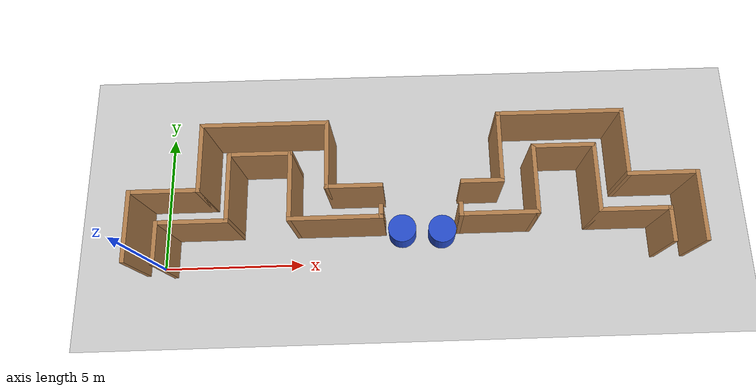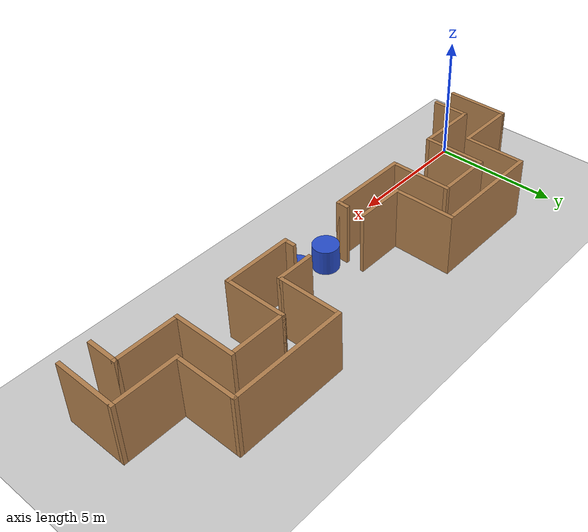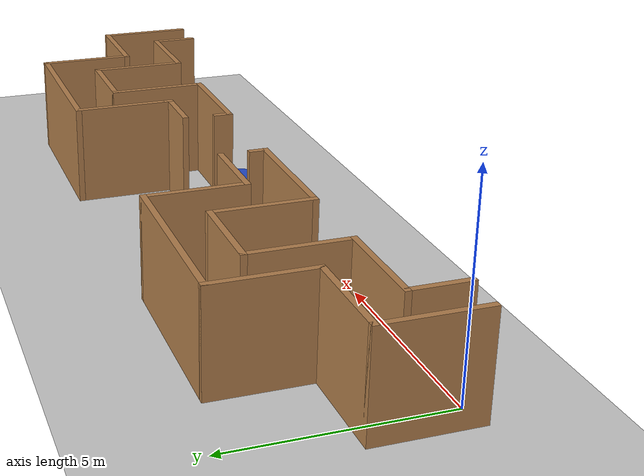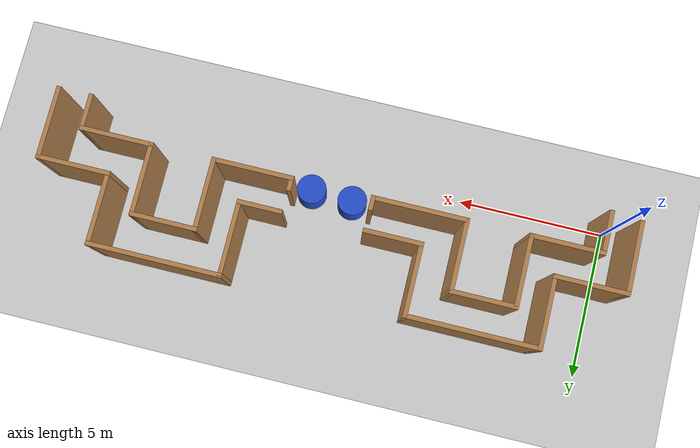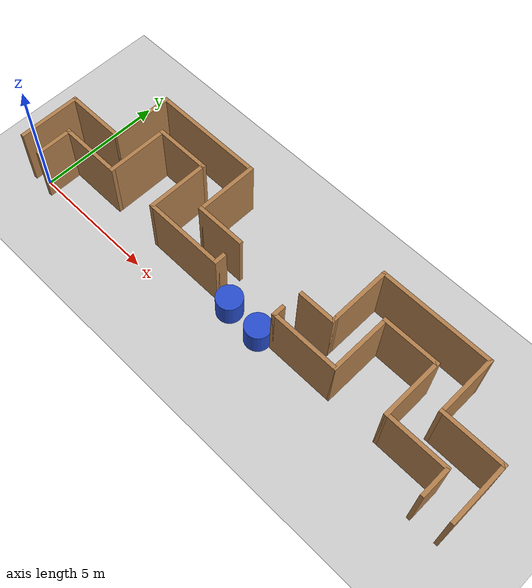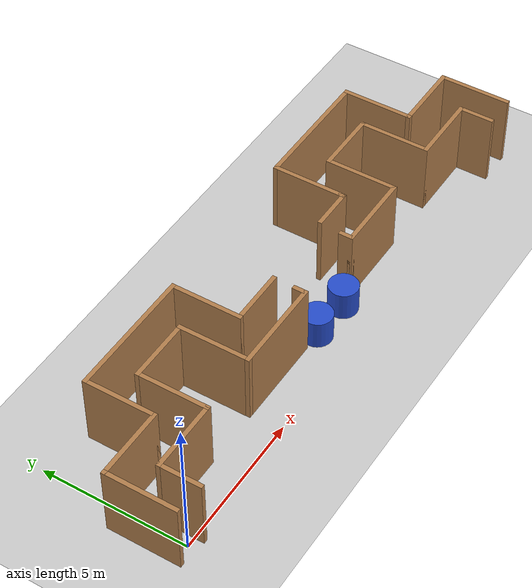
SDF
<sdf version="1.6">
 <world name="default">
  <light name="sun" type="directional">
   <pose>0 0 10 0 -0 0</pose>
   <diffuse>0.8 0.8 0.8 1</diffuse>
   <specular>0.2 0.2 0.2 1</specular>
   <attenuation>
    <range>1000</range>
    <constant>0.9</constant>
    <linear>0.01</linear>
    <quadratic>0.001</quadratic>
   </attenuation>
   <direction>-0.5 0.1 -0.9</direction>
  </light>
  <model name="ground_plane">
   <static>1</static>
   <link name="link">
    <collision name="collision">
     <geometry><plane><normal>0 0 1</normal><size>100 100</size></plane></geometry>
     <surface>
      <contact><collide_bitmask>65535</collide_bitmask></contact>
      <friction><ode><mu>100</mu><mu2>50</mu2></ode></friction>
     </surface>
    </collision>
    <visual name="visual">
     <cast_shadows>0</cast_shadows>
     <geometry><plane><normal>0 0 1</normal><size>100 100</size></plane></geometry>
     <material>
      <script><uri>file://media/materials/scripts/gazebo.material</uri><name>Gazebo/Grey</name></script>
     </material>
    </visual>
   </link>
  </model>
  <gravity>0 0 -9.8</gravity>
  <magnetic_field>6e-06 2.3e-05 -4.2e-05</magnetic_field>
  <atmosphere type="adiabatic"/>
  <physics name="default_physics" default="0" type="ode">
   <max_step_size>0.001</max_step_size>
   <real_time_factor>1</real_time_factor>
   <real_time_update_rate>1000</real_time_update_rate>
  </physics>
  <scene><ambient>0.4 0.4 0.4 1</ambient><background>0.7 0.7 0.7 1</background><shadows>1</shadows></scene>
  <audio><device>default</device></audio>
  <spherical_coordinates>
   <surface_model>EARTH_WGS84</surface_model>
   <latitude_deg>0</latitude_deg>
   <longitude_deg>0</longitude_deg>
   <elevation>0</elevation>
   <heading_deg>0</heading_deg>
  </spherical_coordinates>
  <model name="laberinto2_1">
   <pose>9.1133 2.22253 0 0 -0 0</pose>
   <link name="Wall_100">
    <collision name="Wall_100_Collision">
     <geometry><box><size>2.5 0.15 2.5</size></box></geometry>
     <pose>0 0 1.25 0 -0 0</pose>
    </collision>
    <visual name="Wall_100_Visual">
     <pose>0 0 1.25 0 -0 0</pose>
     <geometry><box><size>2.5 0.15 2.5</size></box></geometry>
     <material>
      <script><uri>file://media/materials/scripts/gazebo.material</uri><name>Gazebo/Wood</name></script>
      <ambient>1 1 1 1</ambient>
     </material>
     <meta><layer>0</layer></meta>
    </visual>
    <pose>-3 1.15 0 0 -0 -1.5708</pose>
   </link>
   <link name="Wall_101">
    <collision name="Wall_101_Collision">
     <geometry><box><size>2 0.15 2.5</size></box></geometry>
     <pose>0 0 1.25 0 -0 0</pose>
    </collision>
    <visual name="Wall_101_Visual">
     <pose>0 0 1.25 0 -0 0</pose>
     <geometry><box><size>2 0.15 2.5</size></box></geometry>
     <material>
      <script><uri>file://media/materials/scripts/gazebo.material</uri><name>Gazebo/Wood</name></script>
      <ambient>1 1 1 1</ambient>
     </material>
     <meta><layer>0</layer></meta>
    </visual>
    <pose>-2.075 -0.025 0 0 -0 0</pose>
   </link>
   <link name="Wall_105">
    <collision name="Wall_105_Collision">
     <geometry><box><size>3.25 0.15 2.5</size></box></geometry>
     <pose>0 0 1.25 0 -0 0</pose>
    </collision>
    <visual name="Wall_105_Visual">
     <pose>0 0 1.25 0 -0 0</pose>
     <geometry><box><size>3.25 0.15 2.5</size></box></geometry>
     <material>
      <script><uri>file://media/materials/scripts/gazebo.material</uri><name>Gazebo/Wood</name></script>
      <ambient>1 1 1 1</ambient>
     </material>
     <meta><layer>0</layer></meta>
    </visual>
    <pose>-2.7 -1.125 0 0 -0 3.14159</pose>
   </link>
   <link name="Wall_106">
    <collision name="Wall_106_Collision">
     <geometry><box><size>2.5 0.15 2.5</size></box></geometry>
     <pose>0 0 1.25 0 -0 0</pose>
    </collision>
    <visual name="Wall_106_Visual">
     <pose>0 0 1.25 0 -0 0</pose>
     <geometry><box><size>2.5 0.15 2.5</size></box></geometry>
     <material>
      <script><uri>file://media/materials/scripts/gazebo.material</uri><name>Gazebo/Wood</name></script>
      <ambient>1 1 1 1</ambient>
     </material>
     <meta><layer>0</layer></meta>
    </visual>
    <pose>-4.25 0.05 0 0 -0 1.5708</pose>
   </link>
   <link name="Wall_107">
    <collision name="Wall_107_Collision">
     <geometry><box><size>2.25 0.15 2.5</size></box></geometry>
     <pose>0 0 1.25 0 -0 0</pose>
    </collision>
    <visual name="Wall_107_Visual">
     <pose>0 0 1.25 0 -0 0</pose>
     <geometry><box><size>2.25 0.15 2.5</size></box></geometry>
     <material>
      <script><uri>file://media/materials/scripts/gazebo.material</uri><name>Gazebo/Wood</name></script>
      <ambient>1 1 1 1</ambient>
     </material>
     <meta><layer>0</layer></meta>
    </visual>
    <pose>-5.3 1.225 0 0 -0 3.14159</pose>
   </link>
   <link name="Wall_108">
    <collision name="Wall_108_Collision">
     <geometry><box><size>2.5 0.15 2.5</size></box></geometry>
     <pose>0 0 1.25 0 -0 0</pose>
    </collision>
    <visual name="Wall_108_Visual">
     <pose>0 0 1.25 0 -0 0</pose>
     <geometry><box><size>2.5 0.15 2.5</size></box></geometry>
     <material>
      <script><uri>file://media/materials/scripts/gazebo.material</uri><name>Gazebo/Wood</name></script>
      <ambient>1 1 1 1</ambient>
     </material>
     <meta><layer>0</layer></meta>
    </visual>
    <pose>-6.35 0.05 0 0 -0 -1.5708</pose>
   </link>
   <link name="Wall_109">
    <collision name="Wall_109_Collision">
     <geometry><box><size>2.5 0.15 2.5</size></box></geometry>
     <pose>0 0 1.25 0 -0 0</pose>
    </collision>
    <visual name="Wall_109_Visual">
     <pose>0 0 1.25 0 -0 0</pose>
     <geometry><box><size>2.5 0.15 2.5</size></box></geometry>
     <material>
      <script><uri>file://media/materials/scripts/gazebo.material</uri><name>Gazebo/Wood</name></script>
      <ambient>1 1 1 1</ambient>
     </material>
     <meta><layer>0</layer></meta>
    </visual>
    <pose>-7.525 -1.125 0 0 -0 3.14159</pose>
   </link>
   <link name="Wall_110">
    <collision name="Wall_110_Collision">
     <geometry><box><size>1.5 0.15 2.5</size></box></geometry>
     <pose>0 0 1.25 0 -0 0</pose>
    </collision>
    <visual name="Wall_110_Visual">
     <pose>0 0 1.25 0 -0 0</pose>
     <geometry><box><size>1.5 0.15 2.5</size></box></geometry>
     <material>
      <script><uri>file://media/materials/scripts/gazebo.material</uri><name>Gazebo/Wood</name></script>
      <ambient>1 1 1 1</ambient>
     </material>
     <meta><layer>0</layer></meta>
    </visual>
    <pose>-8.7 -1.8 0 0 -0 -1.5708</pose>
   </link>
   <link name="Wall_112">
    <collision name="Wall_112_Collision">
     <geometry><box><size>0.5 0.15 2.5</size></box></geometry>
     <pose>0 0 1.25 0 -0 0</pose>
    </collision>
    <visual name="Wall_112_Visual">
     <pose>0 0 1.25 0 -0 0</pose>
     <geometry><box><size>0.5 0.15 2.5</size></box></geometry>
     <material>
      <script><uri>file://media/materials/scripts/gazebo.material</uri><name>Gazebo/Wood</name></script>
      <ambient>1 1 1 1</ambient>
     </material>
     <meta><layer>0</layer></meta>
    </visual>
    <pose>-1.15 -0.95 0 0 -0 1.5708</pose>
   </link>
   <link name="Wall_115">
    <collision name="Wall_115_Collision">
     <geometry><box><size>0.5 0.15 2.5</size></box></geometry>
     <pose>0 0 1.25 0 -0 0</pose>
    </collision>
    <visual name="Wall_115_Visual">
     <pose>0 0 1.25 0 -0 0</pose>
     <geometry><box><size>0.5 0.15 2.5</size></box></geometry>
     <material>
      <script><uri>file://media/materials/scripts/gazebo.material</uri><name>Gazebo/Wood</name></script>
      <ambient>1 1 1 1</ambient>
     </material>
     <meta><layer>0</layer></meta>
    </visual>
    <pose>1.55 -0.95 0 0 -0 -1.5708</pose>
   </link>
   <link name="Wall_116">
    <collision name="Wall_116_Collision">
     <geometry><box><size>2.75 0.15 2.5</size></box></geometry>
     <pose>0 0 1.25 0 -0 0</pose>
    </collision>
    <visual name="Wall_116_Visual">
     <pose>0 0 1.25 0 -0 0</pose>
     <geometry><box><size>2.75 0.15 2.5</size></box></geometry>
     <material>
      <script><uri>file://media/materials/scripts/gazebo.material</uri><name>Gazebo/Wood</name></script>
      <ambient>1 1 1 1</ambient>
     </material>
     <meta><layer>0</layer></meta>
    </visual>
    <pose>2.85 -1.125 0 0 -0 0</pose>
   </link>
   <link name="Wall_117">
    <collision name="Wall_117_Collision">
     <geometry><box><size>2.5 0.15 2.5</size></box></geometry>
     <pose>0 0 1.25 0 -0 0</pose>
    </collision>
    <visual name="Wall_117_Visual">
     <pose>0 0 1.25 0 -0 0</pose>
     <geometry><box><size>2.5 0.15 2.5</size></box></geometry>
     <material>
      <script><uri>file://media/materials/scripts/gazebo.material</uri><name>Gazebo/Wood</name></script>
      <ambient>1 1 1 1</ambient>
     </material>
     <meta><layer>0</layer></meta>
    </visual>
    <pose>4.15 0.05 0 0 -0 1.5708</pose>
   </link>
   <link name="Wall_118">
    <collision name="Wall_118_Collision">
     <geometry><box><size>2.25 0.15 2.5</size></box></geometry>
     <pose>0 0 1.25 0 -0 0</pose>
    </collision>
    <visual name="Wall_118_Visual">
     <pose>0 0 1.25 0 -0 0</pose>
     <geometry><box><size>2.25 0.15 2.5</size></box></geometry>
     <material>
      <script><uri>file://media/materials/scripts/gazebo.material</uri><name>Gazebo/Wood</name></script>
      <ambient>1 1 1 1</ambient>
     </material>
     <meta><layer>0</layer></meta>
    </visual>
    <pose>5.2 1.225 0 0 -0 0</pose>
   </link>
   <link name="Wall_119">
    <collision name="Wall_119_Collision">
     <geometry><box><size>2.5 0.15 2.5</size></box></geometry>
     <pose>0 0 1.25 0 -0 0</pose>
    </collision>
    <visual name="Wall_119_Visual">
     <pose>0 0 1.25 0 -0 0</pose>
     <geometry><box><size>2.5 0.15 2.5</size></box></geometry>
     <material>
      <script><uri>file://media/materials/scripts/gazebo.material</uri><name>Gazebo/Wood</name></script>
      <ambient>1 1 1 1</ambient>
     </material>
     <meta><layer>0</layer></meta>
    </visual>
    <pose>6.25 0.05 0 0 -0 -1.5708</pose>
   </link>
   <link name="Wall_120">
    <collision name="Wall_120_Collision">
     <geometry><box><size>2.5 0.15 2.5</size></box></geometry>
     <pose>0 0 1.25 0 -0 0</pose>
    </collision>
    <visual name="Wall_120_Visual">
     <pose>0 0 1.25 0 -0 0</pose>
     <geometry><box><size>2.5 0.15 2.5</size></box></geometry>
     <material>
      <script><uri>file://media/materials/scripts/gazebo.material</uri><name>Gazebo/Wood</name></script>
      <ambient>1 1 1 1</ambient>
     </material>
     <meta><layer>0</layer></meta>
    </visual>
    <pose>7.425 -1.125 0 0 -0 0</pose>
   </link>
   <link name="Wall_121">
    <collision name="Wall_121_Collision">
     <geometry><box><size>1.25 0.15 2.5</size></box></geometry>
     <pose>0 0 1.25 0 -0 0</pose>
    </collision>
    <visual name="Wall_121_Visual">
     <pose>0 0 1.25 0 -0 0</pose>
     <geometry><box><size>1.25 0.15 2.5</size></box></geometry>
     <material>
      <script><uri>file://media/materials/scripts/gazebo.material</uri><name>Gazebo/Wood</name></script>
      <ambient>1 1 1 1</ambient>
     </material>
     <meta><layer>0</layer></meta>
    </visual>
    <pose>8.6 -1.675 0 0 -0 -1.5708</pose>
   </link>
   <link name="Wall_123">
    <collision name="Wall_123_Collision">
     <geometry><box><size>2.5 0.15 2.5</size></box></geometry>
     <pose>0 0 1.25 0 -0 0</pose>
    </collision>
    <visual name="Wall_123_Visual">
     <pose>0 0 1.25 0 -0 0</pose>
     <geometry><box><size>2.5 0.15 2.5</size></box></geometry>
     <material>
      <script><uri>file://media/materials/scripts/gazebo.material</uri><name>Gazebo/Wood</name></script>
      <ambient>1 1 1 1</ambient>
     </material>
     <meta><layer>0</layer></meta>
    </visual>
    <pose>9.7 -1.05 0 0 -0 1.5708</pose>
   </link>
   <link name="Wall_124">
    <collision name="Wall_124_Collision">
     <geometry><box><size>2.5 0.15 2.5</size></box></geometry>
     <pose>0 0 1.25 0 -0 0</pose>
    </collision>
    <visual name="Wall_124_Visual">
     <pose>0 0 1.25 0 -0 0</pose>
     <geometry><box><size>2.5 0.15 2.5</size></box></geometry>
     <material>
      <script><uri>file://media/materials/scripts/gazebo.material</uri><name>Gazebo/Wood</name></script>
      <ambient>1 1 1 1</ambient>
     </material>
     <meta><layer>0</layer></meta>
    </visual>
    <pose>8.525 0.125 0 0 -0 3.14159</pose>
   </link>
   <link name="Wall_125">
    <collision name="Wall_125_Collision">
     <geometry><box><size>2.5 0.15 2.5</size></box></geometry>
     <pose>0 0 1.25 0 -0 0</pose>
    </collision>
    <visual name="Wall_125_Visual">
     <pose>0 0 1.25 0 -0 0</pose>
     <geometry><box><size>2.5 0.15 2.5</size></box></geometry>
     <material>
      <script><uri>file://media/materials/scripts/gazebo.material</uri><name>Gazebo/Wood</name></script>
      <ambient>1 1 1 1</ambient>
     </material>
     <meta><layer>0</layer></meta>
    </visual>
    <pose>7.35 1.3 0 0 -0 1.5708</pose>
   </link>
   <link name="Wall_126">
    <collision name="Wall_126_Collision">
     <geometry><box><size>4.5 0.15 2.5</size></box></geometry>
     <pose>0 0 1.25 0 -0 0</pose>
    </collision>
    <visual name="Wall_126_Visual">
     <pose>0 0 1.25 0 -0 0</pose>
     <geometry><box><size>4.5 0.15 2.5</size></box></geometry>
     <material>
      <script><uri>file://media/materials/scripts/gazebo.material</uri><name>Gazebo/Wood</name></script>
      <ambient>1 1 1 1</ambient>
     </material>
     <meta><layer>0</layer></meta>
    </visual>
    <pose>5.175 2.475 0 0 -0 3.14159</pose>
   </link>
   <link name="Wall_127">
    <collision name="Wall_127_Collision">
     <geometry><box><size>2.5 0.15 2.5</size></box></geometry>
     <pose>0 0 1.25 0 -0 0</pose>
    </collision>
    <visual name="Wall_127_Visual">
     <pose>0 0 1.25 0 -0 0</pose>
     <geometry><box><size>2.5 0.15 2.5</size></box></geometry>
     <material>
      <script><uri>file://media/materials/scripts/gazebo.material</uri><name>Gazebo/Wood</name></script>
      <ambient>1 1 1 1</ambient>
     </material>
     <meta><layer>0</layer></meta>
    </visual>
    <pose>3 1.3 0 0 -0 -1.5708</pose>
   </link>
   <link name="Wall_128">
    <collision name="Wall_128_Collision">
     <geometry><box><size>0.25 0.15 2.5</size></box></geometry>
     <pose>0 0 1.25 0 -0 0</pose>
    </collision>
    <visual name="Wall_128_Visual">
     <pose>0 0 1.25 0 -0 0</pose>
     <geometry><box><size>0.25 0.15 2.5</size></box></geometry>
     <material>
      <script><uri>file://media/materials/scripts/gazebo.material</uri><name>Gazebo/Wood</name></script>
      <ambient>1 1 1 1</ambient>
     </material>
     <meta><layer>0</layer></meta>
    </visual>
    <pose>3 0.075 0 0 -0 -1.5708</pose>
   </link>
   <link name="Wall_129">
    <collision name="Wall_129_Collision">
     <geometry><box><size>1.5 0.15 2.5</size></box></geometry>
     <pose>0 0 1.25 0 -0 0</pose>
    </collision>
    <visual name="Wall_129_Visual">
     <pose>0 0 1.25 0 -0 0</pose>
     <geometry><box><size>1.5 0.15 2.5</size></box></geometry>
     <material>
      <script><uri>file://media/materials/scripts/gazebo.material</uri><name>Gazebo/Wood</name></script>
      <ambient>1 1 1 1</ambient>
     </material>
     <meta><layer>0</layer></meta>
    </visual>
    <pose>2.325 0.025 0 0 -0 3.14159</pose>
   </link>
   <link name="Wall_96">
    <collision name="Wall_96_Collision">
     <geometry><box><size>2.5 0.15 2.5</size></box></geometry>
     <pose>0 0 1.25 0 -0 0</pose>
    </collision>
    <visual name="Wall_96_Visual">
     <pose>0 0 1.25 0 -0 0</pose>
     <geometry><box><size>2.5 0.15 2.5</size></box></geometry>
     <material>
      <script><uri>file://media/materials/scripts/gazebo.material</uri><name>Gazebo/Wood</name></script>
      <ambient>1 1 1 1</ambient>
     </material>
     <meta><layer>0</layer></meta>
    </visual>
    <pose>-9.7 -1.2 0 0 -0 1.5708</pose>
   </link>
   <link name="Wall_97">
    <collision name="Wall_97_Collision">
     <geometry><box><size>2.5 0.15 2.5</size></box></geometry>
     <pose>0 0 1.25 0 -0 0</pose>
    </collision>
    <visual name="Wall_97_Visual">
     <pose>0 0 1.25 0 -0 0</pose>
     <geometry><box><size>2.5 0.15 2.5</size></box></geometry>
     <material>
      <script><uri>file://media/materials/scripts/gazebo.material</uri><name>Gazebo/Wood</name></script>
      <ambient>1 1 1 1</ambient>
     </material>
     <meta><layer>0</layer></meta>
    </visual>
    <pose>-8.525 -0.025 0 0 -0 0</pose>
   </link>
   <link name="Wall_98">
    <collision name="Wall_98_Collision">
     <geometry><box><size>2.5 0.15 2.5</size></box></geometry>
     <pose>0 0 1.25 0 -0 0</pose>
    </collision>
    <visual name="Wall_98_Visual">
     <pose>0 0 1.25 0 -0 0</pose>
     <geometry><box><size>2.5 0.15 2.5</size></box></geometry>
     <material>
      <script><uri>file://media/materials/scripts/gazebo.material</uri><name>Gazebo/Wood</name></script>
      <ambient>1 1 1 1</ambient>
     </material>
     <meta><layer>0</layer></meta>
    </visual>
    <pose>-7.35 1.15 0 0 -0 1.5708</pose>
   </link>
   <link name="Wall_99">
    <collision name="Wall_99_Collision">
     <geometry><box><size>4.5 0.15 2.5</size></box></geometry>
     <pose>0 0 1.25 0 -0 0</pose>
    </collision>
    <visual name="Wall_99_Visual">
     <pose>0 0 1.25 0 -0 0</pose>
     <geometry><box><size>4.5 0.15 2.5</size></box></geometry>
     <material>
      <script><uri>file://media/materials/scripts/gazebo.material</uri><name>Gazebo/Wood</name></script>
      <ambient>1 1 1 1</ambient>
     </material>
     <meta><layer>0</layer></meta>
    </visual>
    <pose>-5.175 2.325 0 0 -0 0</pose>
   </link>
   <static>1</static>
  </model>
  <model name="laberinto_2">
   <link name="link">
    <inertial>
     <mass>1</mass>
     <inertia><ixx>0.145833</ixx><ixy>0</ixy><ixz>0</ixz><iyy>0.145833</iyy><iyz>0</iyz><izz>0.125</izz></inertia>
    </inertial>
    <visual name="visual">
     <geometry><cylinder><radius>0.5</radius><length>1</length></cylinder></geometry>
     <material>
      <script><name>Gazebo/Blue</name><uri>file://media/materials/scripts/gazebo.material</uri></script>
      <shader type="vertex"><normal_map>__default__</normal_map></shader>
      <ambient>0 0 1 1</ambient>
      <diffuse>0 0 1 1</diffuse>
      <specular>0.1 0.1 0.1 1</specular>
      <emissive>0 0 0 1</emissive>
     </material>
    </visual>
    <collision name="collision">
     <geometry><cylinder><radius>0.5</radius><length>1</length></cylinder></geometry>
     <surface>
      <friction>
       <ode><mu>1</mu><mu2>1</mu2><fdir1>0 0 0</fdir1><slip1>0</slip1><slip2>0</slip2></ode>
       <torsional>
        <coefficient>1</coefficient>
        <patch_radius>0</patch_radius>
        <surface_radius>0</surface_radius>
        <use_patch_radius>1</use_patch_radius>
        <ode><slip>0</slip></ode>
       </torsional>
      </friction>
      <bounce><restitution_coefficient>0</restitution_coefficient><threshold>1e+06</threshold></bounce>
      <contact>
       <collide_without_contact>0</collide_without_contact>
       <collide_without_contact_bitmask>1</collide_without_contact_bitmask>
       <collide_bitmask>1</collide_bitmask>
       <ode>
        <soft_cfm>0</soft_cfm>
        <soft_erp>0.2</soft_erp>
        <kp>1e+13</kp>
        <kd>1</kd>
        <max_vel>0.01</max_vel>
        <min_depth>0</min_depth>
       </ode>
       <bullet>
        <split_impulse>1</split_impulse>
        <split_impulse_penetration_threshold>-0.01</split_impulse_penetration_threshold>
        <soft_cfm>0</soft_cfm>
        <soft_erp>0.2</soft_erp>
        <kp>1e+13</kp>
        <kd>1</kd>
       </bullet>
      </contact>
     </surface>
    </collision>
   </link>
   <static>0</static>
   <pose>8.64035 1.04329 0.5 0 -0 0</pose>
  </model>
  <model name="laberinto_2_clone">
   <link name="link">
    <inertial>
     <mass>1</mass>
     <inertia><ixx>0.145833</ixx><ixy>0</ixy><ixz>0</ixz><iyy>0.145833</iyy><iyz>0</iyz><izz>0.125</izz></inertia>
    </inertial>
    <visual name="visual">
     <geometry><cylinder><radius>0.5</radius><length>1</length></cylinder></geometry>
     <material>
      <script><name>Gazebo/Blue</name><uri>file://media/materials/scripts/gazebo.material</uri></script>
      <shader type="vertex"><normal_map>__default__</normal_map></shader>
      <ambient>0 0 1 1</ambient>
      <diffuse>0 0 1 1</diffuse>
      <specular>0.1 0.1 0.1 1</specular>
      <emissive>0 0 0 1</emissive>
     </material>
    </visual>
    <collision name="collision">
     <geometry><cylinder><radius>0.5</radius><length>1</length></cylinder></geometry>
     <surface>
      <friction>
       <ode><mu>1</mu><mu2>1</mu2><fdir1>0 0 0</fdir1><slip1>0</slip1><slip2>0</slip2></ode>
       <torsional>
        <coefficient>1</coefficient>
        <patch_radius>0</patch_radius>
        <surface_radius>0</surface_radius>
        <use_patch_radius>1</use_patch_radius>
        <ode><slip>0</slip></ode>
       </torsional>
      </friction>
      <bounce><restitution_coefficient>0</restitution_coefficient><threshold>1e+06</threshold></bounce>
      <contact>
       <collide_without_contact>0</collide_without_contact>
       <collide_without_contact_bitmask>1</collide_without_contact_bitmask>
       <collide_bitmask>1</collide_bitmask>
       <ode>
        <soft_cfm>0</soft_cfm>
        <soft_erp>0.2</soft_erp>
        <kp>1e+13</kp>
        <kd>1</kd>
        <max_vel>0.01</max_vel>
        <min_depth>0</min_depth>
       </ode>
       <bullet>
        <split_impulse>1</split_impulse>
        <split_impulse_penetration_threshold>-0.01</split_impulse_penetration_threshold>
        <soft_cfm>0</soft_cfm>
        <soft_erp>0.2</soft_erp>
        <kp>1e+13</kp>
        <kd>1</kd>
       </bullet>
      </contact>
     </surface>
    </collision>
   </link>
   <static>0</static>
   <pose>10.0724 0.982569 0.5 0 -0 0</pose>
  </model>
 </world>
</sdf>
